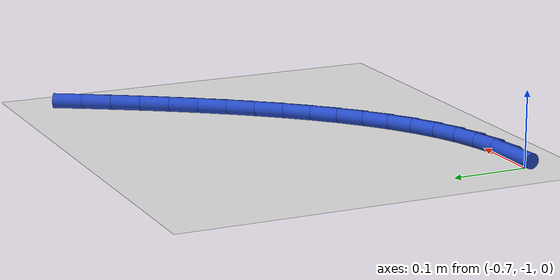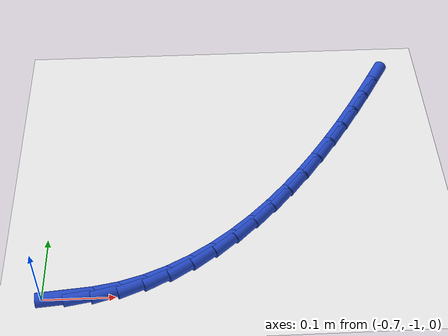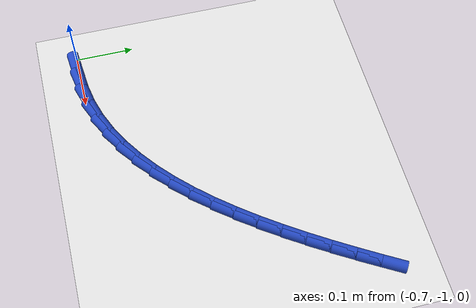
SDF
<sdf version="1.6">
 <world name="default">
  <model name="ground_plane">
   <static>1</static>
   <link name="link">
    <collision name="collision">
     <geometry><plane><normal>0 0 1</normal><size>100 100</size></plane></geometry>
     <surface><friction><ode><mu>100</mu><mu2>50</mu2></ode></friction></surface>
    </collision>
    <visual name="visual">
     <cast_shadows>0</cast_shadows>
     <geometry><plane><normal>0 0 1</normal><size>100 100</size></plane></geometry>
     <material>
      <script><uri>file://media/materials/scripts/gazebo.material</uri><name>Gazebo/WhiteGlow</name></script>
     </material>
    </visual>
   </link>
  </model>
  <model name="line">
   <link name="link_176">
    <pose>-0.6664145565050154 -1.0026549978665549 0.01 0 1.57 0.08944658551640988</pose>
    <collision name="collision">
     <geometry><cylinder><radius>0.01</radius><length>0.08</length></cylinder></geometry>
    </collision>
    <visual name="visual">
     <material>
      <script><name>Gazebo/Blue</name><uri>file://media/materials/scripts/gazebo.material</uri></script>
     </material>
     <geometry><cylinder><radius>0.01</radius><length>0.08</length></cylinder></geometry>
    </visual>
   </link>
   <link name="link_177">
    <pose>-0.6303517262503345 -0.9994206706136198 0.01 0 1.57 0.18153961214845224</pose>
    <collision name="collision">
     <geometry><cylinder><radius>0.01</radius><length>0.08</length></cylinder></geometry>
    </collision>
    <visual name="visual">
     <material>
      <script><name>Gazebo/Blue</name><uri>file://media/materials/scripts/gazebo.material</uri></script>
     </material>
     <geometry><cylinder><radius>0.01</radius><length>0.08</length></cylinder></geometry>
    </visual>
   </link>
   <link name="link_178">
    <pose>-0.5953505696448357 -0.99299583838329 0.01 0 1.57 0.28969839254709556</pose>
    <collision name="collision">
     <geometry><cylinder><radius>0.01</radius><length>0.08</length></cylinder></geometry>
    </collision>
    <visual name="visual">
     <material>
      <script><name>Gazebo/Blue</name><uri>file://media/materials/scripts/gazebo.material</uri></script>
     </material>
     <geometry><cylinder><radius>0.01</radius><length>0.08</length></cylinder></geometry>
    </visual>
   </link>
   <link name="link_179">
    <pose>-0.5615403855119745 -0.9829175516069227 0.01 0 1.57 0.3931573077641149</pose>
    <collision name="collision">
     <geometry><cylinder><radius>0.01</radius><length>0.08</length></cylinder></geometry>
    </collision>
    <visual name="visual">
     <material>
      <script><name>Gazebo/Blue</name><uri>file://media/materials/scripts/gazebo.material</uri></script>
     </material>
     <geometry><cylinder><radius>0.01</radius><length>0.08</length></cylinder></geometry>
    </visual>
   </link>
   <link name="link_180">
    <pose>-0.5289011472295738 -0.969380410897841 0.01 0 1.57 0.48819667958965307</pose>
    <collision name="collision">
     <geometry><cylinder><radius>0.01</radius><length>0.08</length></cylinder></geometry>
    </collision>
    <visual name="visual">
     <material>
      <script><name>Gazebo/Blue</name><uri>file://media/materials/scripts/gazebo.material</uri></script>
     </material>
     <geometry><cylinder><radius>0.01</radius><length>0.08</length></cylinder></geometry>
    </visual>
   </link>
   <link name="link_181">
    <pose>-0.49739686591479937 -0.9526493062119248 0.01 0 1.57 0.5739837406713257</pose>
    <collision name="collision">
     <geometry><cylinder><radius>0.01</radius><length>0.08</length></cylinder></geometry>
    </collision>
    <visual name="visual">
     <material>
      <script><name>Gazebo/Blue</name><uri>file://media/materials/scripts/gazebo.material</uri></script>
     </material>
     <geometry><cylinder><radius>0.01</radius><length>0.08</length></cylinder></geometry>
    </visual>
   </link>
   <link name="link_182">
    <pose>-0.46699155268481596 -0.9329891275050535 0.01 0 1.57 0.6503927882000027</pose>
    <collision name="collision">
     <geometry><cylinder><radius>0.01</radius><length>0.08</length></cylinder></geometry>
    </collision>
    <visual name="visual">
     <material>
      <script><name>Gazebo/Blue</name><uri>file://media/materials/scripts/gazebo.material</uri></script>
     </material>
     <geometry><cylinder><radius>0.01</radius><length>0.08</length></cylinder></geometry>
    </visual>
   </link>
   <link name="link_183">
    <pose>-0.43764921865678824 -0.9106647647331059 0.01 0 1.57 0.7177835457827699</pose>
    <collision name="collision">
     <geometry><cylinder><radius>0.01</radius><length>0.08</length></cylinder></geometry>
    </collision>
    <visual name="visual">
     <material>
      <script><name>Gazebo/Blue</name><uri>file://media/materials/scripts/gazebo.material</uri></script>
     </material>
     <geometry><cylinder><radius>0.01</radius><length>0.08</length></cylinder></geometry>
    </visual>
   </link>
   <link name="link_184">
    <pose>-0.4093338749478826 -0.8859411078519625 0.01 0 1.57 0.776792606991732</pose>
    <collision name="collision">
     <geometry><cylinder><radius>0.01</radius><length>0.08</length></cylinder></geometry>
    </collision>
    <visual name="visual">
     <material>
      <script><name>Gazebo/Blue</name><uri>file://media/materials/scripts/gazebo.material</uri></script>
     </material>
     <geometry><cylinder><radius>0.01</radius><length>0.08</length></cylinder></geometry>
    </visual>
   </link>
   <link name="link_185">
    <pose>-0.38200953267526366 -0.8590830468175025 0.01 0 1.57 0.8281738329179766</pose>
    <collision name="collision">
     <geometry><cylinder><radius>0.01</radius><length>0.08</length></cylinder></geometry>
    </collision>
    <visual name="visual">
     <material>
      <script><name>Gazebo/Blue</name><uri>file://media/materials/scripts/gazebo.material</uri></script>
     </material>
     <geometry><cylinder><radius>0.01</radius><length>0.08</length></cylinder></geometry>
    </visual>
   </link>
   <link name="link_186">
    <pose>-0.3556402029560966 -0.8303554715856053 0.01 0 1.57 0.8726923182101971</pose>
    <collision name="collision">
     <geometry><cylinder><radius>0.01</radius><length>0.08</length></cylinder></geometry>
    </collision>
    <visual name="visual">
     <material>
      <script><name>Gazebo/Blue</name><uri>file://media/materials/scripts/gazebo.material</uri></script>
     </material>
     <geometry><cylinder><radius>0.01</radius><length>0.08</length></cylinder></geometry>
    </visual>
   </link>
   <link name="link_187">
    <pose>-0.3301898969075466 -0.8000232721121505 0.01 0 1.57 0.9110618465067863</pose>
    <collision name="collision">
     <geometry><cylinder><radius>0.01</radius><length>0.08</length></cylinder></geometry>
    </collision>
    <visual name="visual">
     <material>
      <script><name>Gazebo/Blue</name><uri>file://media/materials/scripts/gazebo.material</uri></script>
     </material>
     <geometry><cylinder><radius>0.01</radius><length>0.08</length></cylinder></geometry>
    </visual>
   </link>
   <link name="link_188">
    <pose>-0.3056226256467788 -0.7683513383530174 0.01 0 1.57 0.9439123853243275</pose>
    <collision name="collision">
     <geometry><cylinder><radius>0.01</radius><length>0.08</length></cylinder></geometry>
    </collision>
    <visual name="visual">
     <material>
      <script><name>Gazebo/Blue</name><uri>file://media/materials/scripts/gazebo.material</uri></script>
     </material>
     <geometry><cylinder><radius>0.01</radius><length>0.08</length></cylinder></geometry>
    </visual>
   </link>
   <link name="link_189">
    <pose>-0.2819024002909576 -0.7356045602640844 0.01 0 1.57 0.9717759683400519</pose>
    <collision name="collision">
     <geometry><cylinder><radius>0.01</radius><length>0.08</length></cylinder></geometry>
    </collision>
    <visual name="visual">
     <material>
      <script><name>Gazebo/Blue</name><uri>file://media/materials/scripts/gazebo.material</uri></script>
     </material>
     <geometry><cylinder><radius>0.01</radius><length>0.08</length></cylinder></geometry>
    </visual>
   </link>
   <link name="link_190">
    <pose>-0.2589932319572496 -0.7020478278012333 0.01 0 1.57 0.9950824479224532</pose>
    <collision name="collision">
     <geometry><cylinder><radius>0.01</radius><length>0.08</length></cylinder></geometry>
    </collision>
    <visual name="visual">
     <material>
      <script><name>Gazebo/Blue</name><uri>file://media/materials/scripts/gazebo.material</uri></script>
     </material>
     <geometry><cylinder><radius>0.01</radius><length>0.08</length></cylinder></geometry>
    </visual>
   </link>
   <link name="link_191">
    <pose>-0.23685913176281925 -0.667946030920342 0.01 0 1.57 1.0141593875241417</pose>
    <collision name="collision">
     <geometry><cylinder><radius>0.01</radius><length>0.08</length></cylinder></geometry>
    </collision>
    <visual name="visual">
     <material>
      <script><name>Gazebo/Blue</name><uri>file://media/materials/scripts/gazebo.material</uri></script>
     </material>
     <geometry><cylinder><radius>0.01</radius><length>0.08</length></cylinder></geometry>
    </visual>
   </link>
   <link name="link_192">
    <pose>-0.21546411082483177 -0.6335640595772906 0.01 0 1.57 1.0292323217531745</pose>
    <collision name="collision">
     <geometry><cylinder><radius>0.01</radius><length>0.08</length></cylinder></geometry>
    </collision>
    <visual name="visual">
     <material>
      <script><name>Gazebo/Blue</name><uri>file://media/materials/scripts/gazebo.material</uri></script>
     </material>
     <geometry><cylinder><radius>0.01</radius><length>0.08</length></cylinder></geometry>
    </visual>
   </link>
   <link name="link_193">
    <pose>-0.1947721802604523 -0.599166803727958 0.01 0 1.57 1.0404227530765577</pose>
    <collision name="collision">
     <geometry><cylinder><radius>0.01</radius><length>0.08</length></cylinder></geometry>
    </collision>
    <visual name="visual">
     <material>
      <script><name>Gazebo/Blue</name><uri>file://media/materials/scripts/gazebo.material</uri></script>
     </material>
     <geometry><cylinder><radius>0.01</radius><length>0.08</length></cylinder></geometry>
    </visual>
   </link>
  </model>
 </world>
</sdf>
